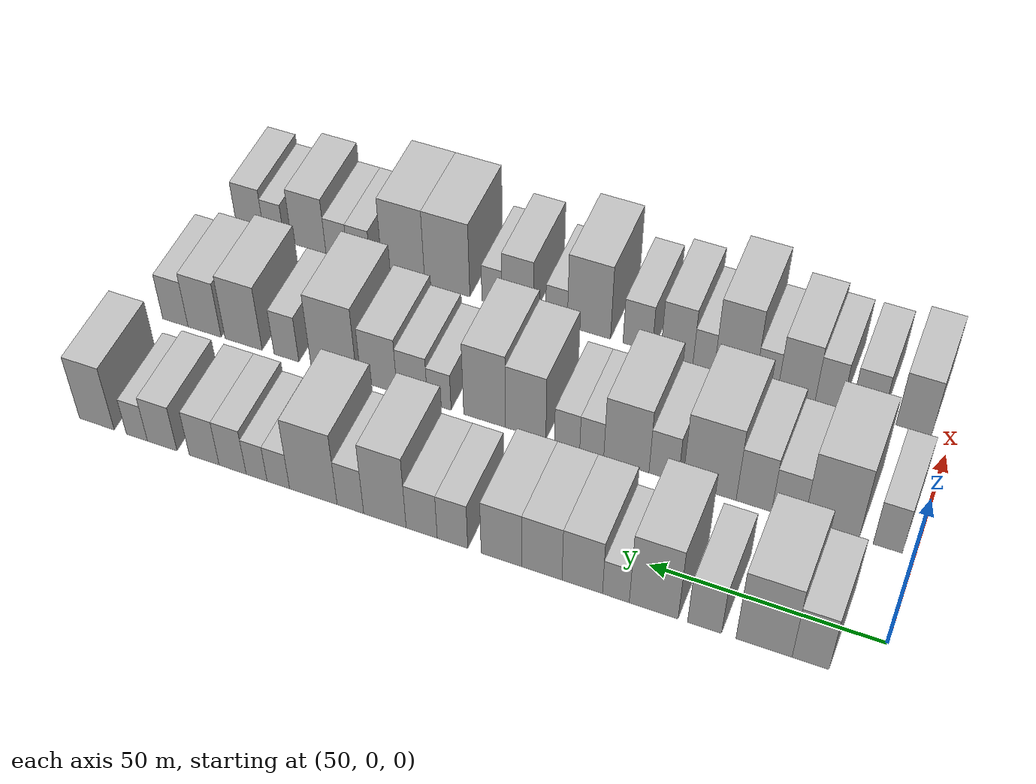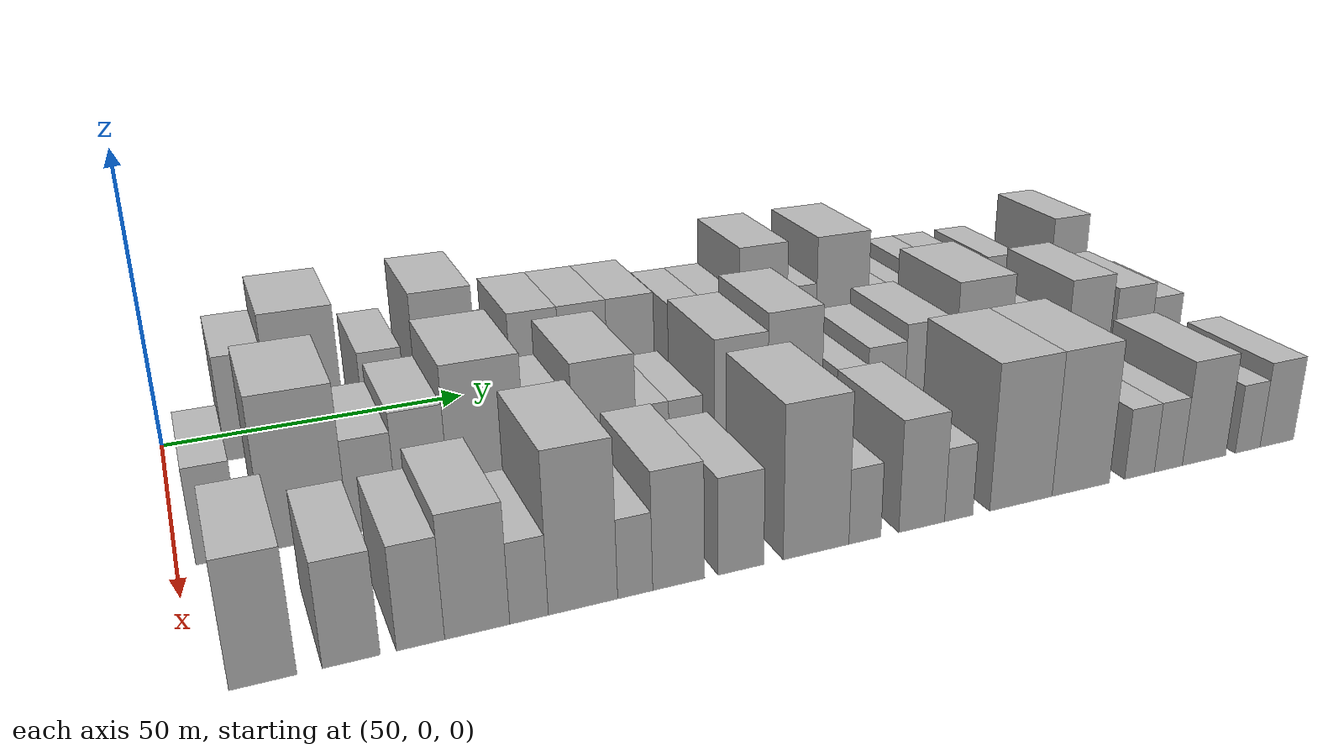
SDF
<sdf version="1.6">
 <world name="default">
  <model name="building_36">
   <static>1</static>
   <pose>50.0000 12.9487 0 0.000000 0.000000 0.000000</pose>
   <link name="link">
    <pose>0 0 9.00 0 0 0</pose>
    <collision name="collision"><geometry><box><size>20.0000 7.5769 18.0000</size></box></geometry></collision>
    <visual name="visual">
     <cast_shadows>0</cast_shadows>
     <geometry><box><size>20.0000 7.5769 18.0000</size></box></geometry>
     <material>
      <script>
       <uri>model://HANNAS_wall/materials/scripts</uri>
       <uri>model://HANNAS_wall/materials/textures</uri>
       <name>vrc/HANNAS_wall</name>
      </script>
     </material>
    </visual>
   </link>
  </model>
  <model name="building_37">
   <static>1</static>
   <pose>50.0000 22.5345 0 0.000000 0.000000 0.000000</pose>
   <link name="link">
    <pose>0 0 12.00 0 0 0</pose>
    <collision name="collision"><geometry><box><size>20.0000 11.5949 24.0000</size></box></geometry></collision>
    <visual name="visual">
     <cast_shadows>0</cast_shadows>
     <geometry><box><size>20.0000 11.5949 24.0000</size></box></geometry>
     <material>
      <script>
       <uri>model://HANNAS_wall/materials/scripts</uri>
       <uri>model://HANNAS_wall/materials/textures</uri>
       <name>vrc/HANNAS_wall</name>
      </script>
     </material>
    </visual>
   </link>
  </model>
  <model name="building_38">
   <static>1</static>
   <pose>50.0000 34.9032 0 0.000000 0.000000 0.000000</pose>
   <link name="link">
    <pose>0 0 7.50 0 0 0</pose>
    <collision name="collision"><geometry><box><size>20.0000 7.1424 15.0000</size></box></geometry></collision>
    <visual name="visual">
     <cast_shadows>0</cast_shadows>
     <geometry><box><size>20.0000 7.1424 15.0000</size></box></geometry>
     <material>
      <script>
       <uri>model://HANNAS_wall/materials/scripts</uri>
       <uri>model://HANNAS_wall/materials/textures</uri>
       <name>vrc/HANNAS_wall</name>
      </script>
     </material>
    </visual>
   </link>
  </model>
  <model name="building_39">
   <static>1</static>
   <pose>50.0000 45.6754 0 0.000000 0.000000 0.000000</pose>
   <link name="link">
    <pose>0 0 12.00 0 0 0</pose>
    <collision name="collision"><geometry><box><size>20.0000 10.4020 24.0000</size></box></geometry></collision>
    <visual name="visual">
     <cast_shadows>0</cast_shadows>
     <geometry><box><size>20.0000 10.4020 24.0000</size></box></geometry>
     <material>
      <script>
       <uri>model://HANNAS_wall/materials/scripts</uri>
       <uri>model://HANNAS_wall/materials/textures</uri>
       <name>vrc/HANNAS_wall</name>
      </script>
     </material>
    </visual>
   </link>
  </model>
  <model name="building_40">
   <static>1</static>
   <pose>50.0000 53.7577 0 0.000000 0.000000 0.000000</pose>
   <link name="link">
    <pose>0 0 6.00 0 0 0</pose>
    <collision name="collision"><geometry><box><size>20.0000 5.7626 12.0000</size></box></geometry></collision>
    <visual name="visual">
     <cast_shadows>0</cast_shadows>
     <geometry><box><size>20.0000 5.7626 12.0000</size></box></geometry>
     <material>
      <script>
       <uri>model://HANNAS_wall/materials/scripts</uri>
       <uri>model://HANNAS_wall/materials/textures</uri>
       <name>vrc/HANNAS_wall</name>
      </script>
     </material>
    </visual>
   </link>
  </model>
  <model name="building_41">
   <static>1</static>
   <pose>50.0000 61.0353 0 0.000000 0.000000 0.000000</pose>
   <link name="link">
    <pose>0 0 9.00 0 0 0</pose>
    <collision name="collision"><geometry><box><size>20.0000 8.7926 18.0000</size></box></geometry></collision>
    <visual name="visual">
     <cast_shadows>0</cast_shadows>
     <geometry><box><size>20.0000 8.7926 18.0000</size></box></geometry>
     <material>
      <script>
       <uri>model://HANNAS_wall/materials/scripts</uri>
       <uri>model://HANNAS_wall/materials/textures</uri>
       <name>vrc/HANNAS_wall</name>
      </script>
     </material>
    </visual>
   </link>
  </model>
  <model name="building_42">
   <static>1</static>
   <pose>50.0000 69.8681 0 0.000000 0.000000 0.000000</pose>
   <link name="link">
    <pose>0 0 9.00 0 0 0</pose>
    <collision name="collision"><geometry><box><size>20.0000 8.8730 18.0000</size></box></geometry></collision>
    <visual name="visual">
     <cast_shadows>0</cast_shadows>
     <geometry><box><size>20.0000 8.8730 18.0000</size></box></geometry>
     <material>
      <script>
       <uri>model://HANNAS_wall/materials/scripts</uri>
       <uri>model://HANNAS_wall/materials/textures</uri>
       <name>vrc/HANNAS_wall</name>
      </script>
     </material>
    </visual>
   </link>
  </model>
  <model name="building_43">
   <static>1</static>
   <pose>50.0000 78.7800 0 0.000000 0.000000 0.000000</pose>
   <link name="link">
    <pose>0 0 9.00 0 0 0</pose>
    <collision name="collision"><geometry><box><size>20.0000 8.9507 18.0000</size></box></geometry></collision>
    <visual name="visual">
     <cast_shadows>0</cast_shadows>
     <geometry><box><size>20.0000 8.9507 18.0000</size></box></geometry>
     <material>
      <script>
       <uri>model://HANNAS_wall/materials/scripts</uri>
       <uri>model://HANNAS_wall/materials/textures</uri>
       <name>vrc/HANNAS_wall</name>
      </script>
     </material>
    </visual>
   </link>
  </model>
  <model name="building_44">
   <static>1</static>
   <pose>50.0000 89.6829 0 0.000000 0.000000 0.000000</pose>
   <link name="link">
    <pose>0 0 7.50 0 0 0</pose>
    <collision name="collision"><geometry><box><size>20.0000 6.8552 15.0000</size></box></geometry></collision>
    <visual name="visual">
     <cast_shadows>0</cast_shadows>
     <geometry><box><size>20.0000 6.8552 15.0000</size></box></geometry>
     <material>
      <script>
       <uri>model://HANNAS_wall/materials/scripts</uri>
       <uri>model://HANNAS_wall/materials/textures</uri>
       <name>vrc/HANNAS_wall</name>
      </script>
     </material>
    </visual>
   </link>
  </model>
  <model name="building_45">
   <static>1</static>
   <pose>50.0000 96.6367 0 0.000000 0.000000 0.000000</pose>
   <link name="link">
    <pose>0 0 7.50 0 0 0</pose>
    <collision name="collision"><geometry><box><size>20.0000 7.0523 15.0000</size></box></geometry></collision>
    <visual name="visual">
     <cast_shadows>0</cast_shadows>
     <geometry><box><size>20.0000 7.0523 15.0000</size></box></geometry>
     <material>
      <script>
       <uri>model://HANNAS_wall/materials/scripts</uri>
       <uri>model://HANNAS_wall/materials/textures</uri>
       <name>vrc/HANNAS_wall</name>
      </script>
     </material>
    </visual>
   </link>
  </model>
  <model name="building_46">
   <static>1</static>
   <pose>50.0000 105.0282 0 0.000000 0.000000 0.000000</pose>
   <link name="link">
    <pose>0 0 12.00 0 0 0</pose>
    <collision name="collision"><geometry><box><size>20.0000 9.7307 24.0000</size></box></geometry></collision>
    <visual name="visual">
     <cast_shadows>0</cast_shadows>
     <geometry><box><size>20.0000 9.7307 24.0000</size></box></geometry>
     <material>
      <script>
       <uri>model://HANNAS_wall/materials/scripts</uri>
       <uri>model://HANNAS_wall/materials/textures</uri>
       <name>vrc/HANNAS_wall</name>
      </script>
     </material>
    </visual>
   </link>
  </model>
  <model name="building_47">
   <static>1</static>
   <pose>50.0000 112.9660 0 0.000000 0.000000 0.000000</pose>
   <link name="link">
    <pose>0 0 7.50 0 0 0</pose>
    <collision name="collision"><geometry><box><size>20.0000 6.1448 15.0000</size></box></geometry></collision>
    <visual name="visual">
     <cast_shadows>0</cast_shadows>
     <geometry><box><size>20.0000 6.1448 15.0000</size></box></geometry>
     <material>
      <script>
       <uri>model://HANNAS_wall/materials/scripts</uri>
       <uri>model://HANNAS_wall/materials/textures</uri>
       <name>vrc/HANNAS_wall</name>
      </script>
     </material>
    </visual>
   </link>
  </model>
  <model name="building_48">
   <static>1</static>
   <pose>50.0000 121.6002 0 0.000000 0.000000 0.000000</pose>
   <link name="link">
    <pose>0 0 12.00 0 0 0</pose>
    <collision name="collision"><geometry><box><size>20.0000 11.1237 24.0000</size></box></geometry></collision>
    <visual name="visual">
     <cast_shadows>0</cast_shadows>
     <geometry><box><size>20.0000 11.1237 24.0000</size></box></geometry>
     <material>
      <script>
       <uri>model://HANNAS_wall/materials/scripts</uri>
       <uri>model://HANNAS_wall/materials/textures</uri>
       <name>vrc/HANNAS_wall</name>
      </script>
     </material>
    </visual>
   </link>
  </model>
  <model name="building_49">
   <static>1</static>
   <pose>50.0000 129.8290 0 0.000000 0.000000 0.000000</pose>
   <link name="link">
    <pose>0 0 6.00 0 0 0</pose>
    <collision name="collision"><geometry><box><size>20.0000 5.3338 12.0000</size></box></geometry></collision>
    <visual name="visual">
     <cast_shadows>0</cast_shadows>
     <geometry><box><size>20.0000 5.3338 12.0000</size></box></geometry>
     <material>
      <script>
       <uri>model://HANNAS_wall/materials/scripts</uri>
       <uri>model://HANNAS_wall/materials/textures</uri>
       <name>vrc/HANNAS_wall</name>
      </script>
     </material>
    </visual>
   </link>
  </model>
  <model name="building_50">
   <static>1</static>
   <pose>50.0000 134.9773 0 0.000000 0.000000 0.000000</pose>
   <link name="link">
    <pose>0 0 6.00 0 0 0</pose>
    <collision name="collision"><geometry><box><size>20.0000 4.9629 12.0000</size></box></geometry></collision>
    <visual name="visual">
     <cast_shadows>0</cast_shadows>
     <geometry><box><size>20.0000 4.9629 12.0000</size></box></geometry>
     <material>
      <script>
       <uri>model://HANNAS_wall/materials/scripts</uri>
       <uri>model://HANNAS_wall/materials/textures</uri>
       <name>vrc/HANNAS_wall</name>
      </script>
     </material>
    </visual>
   </link>
  </model>
  <model name="building_51">
   <static>1</static>
   <pose>50.0000 140.6952 0 0.000000 0.000000 0.000000</pose>
   <link name="link">
    <pose>0 0 7.50 0 0 0</pose>
    <collision name="collision"><geometry><box><size>20.0000 6.4727 15.0000</size></box></geometry></collision>
    <visual name="visual">
     <cast_shadows>0</cast_shadows>
     <geometry><box><size>20.0000 6.4727 15.0000</size></box></geometry>
     <material>
      <script>
       <uri>model://HANNAS_wall/materials/scripts</uri>
       <uri>model://HANNAS_wall/materials/textures</uri>
       <name>vrc/HANNAS_wall</name>
      </script>
     </material>
    </visual>
   </link>
  </model>
  <model name="building_52">
   <static>1</static>
   <pose>50.0000 147.5235 0 0.000000 0.000000 0.000000</pose>
   <link name="link">
    <pose>0 0 7.50 0 0 0</pose>
    <collision name="collision"><geometry><box><size>20.0000 7.1840 15.0000</size></box></geometry></collision>
    <visual name="visual">
     <cast_shadows>0</cast_shadows>
     <geometry><box><size>20.0000 7.1840 15.0000</size></box></geometry>
     <material>
      <script>
       <uri>model://HANNAS_wall/materials/scripts</uri>
       <uri>model://HANNAS_wall/materials/textures</uri>
       <name>vrc/HANNAS_wall</name>
      </script>
     </material>
    </visual>
   </link>
  </model>
  <model name="building_53">
   <static>1</static>
   <pose>50.0000 157.7233 0 0.000000 0.000000 0.000000</pose>
   <link name="link">
    <pose>0 0 7.50 0 0 0</pose>
    <collision name="collision"><geometry><box><size>20.0000 7.2155 15.0000</size></box></geometry></collision>
    <visual name="visual">
     <cast_shadows>0</cast_shadows>
     <geometry><box><size>20.0000 7.2155 15.0000</size></box></geometry>
     <material>
      <script>
       <uri>model://HANNAS_wall/materials/scripts</uri>
       <uri>model://HANNAS_wall/materials/textures</uri>
       <name>vrc/HANNAS_wall</name>
      </script>
     </material>
    </visual>
   </link>
  </model>
  <model name="building_54">
   <static>1</static>
   <pose>50.0000 163.9175 0 0.000000 0.000000 0.000000</pose>
   <link name="link">
    <pose>0 0 6.00 0 0 0</pose>
    <collision name="collision"><geometry><box><size>20.0000 5.1729 12.0000</size></box></geometry></collision>
    <visual name="visual">
     <cast_shadows>0</cast_shadows>
     <geometry><box><size>20.0000 5.1729 12.0000</size></box></geometry>
     <material>
      <script>
       <uri>model://HANNAS_wall/materials/scripts</uri>
       <uri>model://HANNAS_wall/materials/textures</uri>
       <name>vrc/HANNAS_wall</name>
      </script>
     </material>
    </visual>
   </link>
  </model>
  <model name="building_55">
   <static>1</static>
   <pose>50.0000 173.8086 0 0.000000 0.000000 0.000000</pose>
   <link name="link">
    <pose>0 0 10.50 0 0 0</pose>
    <collision name="collision"><geometry><box><size>20.0000 8.6094 21.0000</size></box></geometry></collision>
    <visual name="visual">
     <cast_shadows>0</cast_shadows>
     <geometry><box><size>20.0000 8.6094 21.0000</size></box></geometry>
     <material>
      <script>
       <uri>model://HANNAS_wall/materials/scripts</uri>
       <uri>model://HANNAS_wall/materials/textures</uri>
       <name>vrc/HANNAS_wall</name>
      </script>
     </material>
    </visual>
   </link>
  </model>
  <model name="building_117">
   <static>1</static>
   <pose>82.0000 5.5730 0 0.000000 0.000000 0.000000</pose>
   <link name="link">
    <pose>0 0 7.50 0 0 0</pose>
    <collision name="collision"><geometry><box><size>20.0000 6.1999 15.0000</size></box></geometry></collision>
    <visual name="visual">
     <cast_shadows>0</cast_shadows>
     <geometry><box><size>20.0000 6.1999 15.0000</size></box></geometry>
     <material>
      <script>
       <uri>model://HANNAS_wall/materials/scripts</uri>
       <uri>model://HANNAS_wall/materials/textures</uri>
       <name>vrc/HANNAS_wall</name>
      </script>
     </material>
    </visual>
   </link>
  </model>
  <model name="building_118">
   <static>1</static>
   <pose>82.0000 17.5589 0 0.000000 0.000000 0.000000</pose>
   <link name="link">
    <pose>0 0 12.00 0 0 0</pose>
    <collision name="collision"><geometry><box><size>20.0000 11.7719 24.0000</size></box></geometry></collision>
    <visual name="visual">
     <cast_shadows>0</cast_shadows>
     <geometry><box><size>20.0000 11.7719 24.0000</size></box></geometry>
     <material>
      <script>
       <uri>model://HANNAS_wall/materials/scripts</uri>
       <uri>model://HANNAS_wall/materials/textures</uri>
       <name>vrc/HANNAS_wall</name>
      </script>
     </material>
    </visual>
   </link>
  </model>
  <model name="building_119">
   <static>1</static>
   <pose>82.0000 27.0027 0 0.000000 0.000000 0.000000</pose>
   <link name="link">
    <pose>0 0 7.50 0 0 0</pose>
    <collision name="collision"><geometry><box><size>20.0000 7.1156 15.0000</size></box></geometry></collision>
    <visual name="visual">
     <cast_shadows>0</cast_shadows>
     <geometry><box><size>20.0000 7.1156 15.0000</size></box></geometry>
     <material>
      <script>
       <uri>model://HANNAS_wall/materials/scripts</uri>
       <uri>model://HANNAS_wall/materials/textures</uri>
       <name>vrc/HANNAS_wall</name>
      </script>
     </material>
    </visual>
   </link>
  </model>
  <model name="building_120">
   <static>1</static>
   <pose>82.0000 34.4455 0 0.000000 0.000000 0.000000</pose>
   <link name="link">
    <pose>0 0 9.00 0 0 0</pose>
    <collision name="collision"><geometry><box><size>20.0000 7.7702 18.0000</size></box></geometry></collision>
    <visual name="visual">
     <cast_shadows>0</cast_shadows>
     <geometry><box><size>20.0000 7.7702 18.0000</size></box></geometry>
     <material>
      <script>
       <uri>model://HANNAS_wall/materials/scripts</uri>
       <uri>model://HANNAS_wall/materials/textures</uri>
       <name>vrc/HANNAS_wall</name>
      </script>
     </material>
    </visual>
   </link>
  </model>
  <model name="building_121">
   <static>1</static>
   <pose>82.0000 44.2616 0 0.000000 0.000000 0.000000</pose>
   <link name="link">
    <pose>0 0 12.00 0 0 0</pose>
    <collision name="collision"><geometry><box><size>20.0000 11.8620 24.0000</size></box></geometry></collision>
    <visual name="visual">
     <cast_shadows>0</cast_shadows>
     <geometry><box><size>20.0000 11.8620 24.0000</size></box></geometry>
     <material>
      <script>
       <uri>model://HANNAS_wall/materials/scripts</uri>
       <uri>model://HANNAS_wall/materials/textures</uri>
       <name>vrc/HANNAS_wall</name>
      </script>
     </material>
    </visual>
   </link>
  </model>
  <model name="building_122">
   <static>1</static>
   <pose>82.0000 54.4752 0 0.000000 0.000000 0.000000</pose>
   <link name="link">
    <pose>0 0 7.50 0 0 0</pose>
    <collision name="collision"><geometry><box><size>20.0000 6.5651 15.0000</size></box></geometry></collision>
    <visual name="visual">
     <cast_shadows>0</cast_shadows>
     <geometry><box><size>20.0000 6.5651 15.0000</size></box></geometry>
     <material>
      <script>
       <uri>model://HANNAS_wall/materials/scripts</uri>
       <uri>model://HANNAS_wall/materials/textures</uri>
       <name>vrc/HANNAS_wall</name>
      </script>
     </material>
    </visual>
   </link>
  </model>
  <model name="building_123">
   <static>1</static>
   <pose>82.0000 62.8892 0 0.000000 0.000000 0.000000</pose>
   <link name="link">
    <pose>0 0 10.50 0 0 0</pose>
    <collision name="collision"><geometry><box><size>20.0000 10.2628 21.0000</size></box></geometry></collision>
    <visual name="visual">
     <cast_shadows>0</cast_shadows>
     <geometry><box><size>20.0000 10.2628 21.0000</size></box></geometry>
     <material>
      <script>
       <uri>model://HANNAS_wall/materials/scripts</uri>
       <uri>model://HANNAS_wall/materials/textures</uri>
       <name>vrc/HANNAS_wall</name>
      </script>
     </material>
    </visual>
   </link>
  </model>
  <model name="building_124">
   <static>1</static>
   <pose>82.0000 70.7670 0 0.000000 0.000000 0.000000</pose>
   <link name="link">
    <pose>0 0 6.00 0 0 0</pose>
    <collision name="collision"><geometry><box><size>20.0000 5.4930 12.0000</size></box></geometry></collision>
    <visual name="visual">
     <cast_shadows>0</cast_shadows>
     <geometry><box><size>20.0000 5.4930 12.0000</size></box></geometry>
     <material>
      <script>
       <uri>model://HANNAS_wall/materials/scripts</uri>
       <uri>model://HANNAS_wall/materials/textures</uri>
       <name>vrc/HANNAS_wall</name>
      </script>
     </material>
    </visual>
   </link>
  </model>
  <model name="building_125">
   <static>1</static>
   <pose>82.0000 76.4279 0 0.000000 0.000000 0.000000</pose>
   <link name="link">
    <pose>0 0 6.00 0 0 0</pose>
    <collision name="collision"><geometry><box><size>20.0000 5.8287 12.0000</size></box></geometry></collision>
    <visual name="visual">
     <cast_shadows>0</cast_shadows>
     <geometry><box><size>20.0000 5.8287 12.0000</size></box></geometry>
     <material>
      <script>
       <uri>model://HANNAS_wall/materials/scripts</uri>
       <uri>model://HANNAS_wall/materials/textures</uri>
       <name>vrc/HANNAS_wall</name>
      </script>
     </material>
    </visual>
   </link>
  </model>
  <model name="building_126">
   <static>1</static>
   <pose>82.0000 86.0346 0 0.000000 0.000000 0.000000</pose>
   <link name="link">
    <pose>0 0 10.50 0 0 0</pose>
    <collision name="collision"><geometry><box><size>20.0000 9.3848 21.0000</size></box></geometry></collision>
    <visual name="visual">
     <cast_shadows>0</cast_shadows>
     <geometry><box><size>20.0000 9.3848 21.0000</size></box></geometry>
     <material>
      <script>
       <uri>model://HANNAS_wall/materials/scripts</uri>
       <uri>model://HANNAS_wall/materials/textures</uri>
       <name>vrc/HANNAS_wall</name>
      </script>
     </material>
    </visual>
   </link>
  </model>
  <model name="building_127">
   <static>1</static>
   <pose>82.0000 95.6562 0 0.000000 0.000000 0.000000</pose>
   <link name="link">
    <pose>0 0 12.00 0 0 0</pose>
    <collision name="collision"><geometry><box><size>20.0000 9.8583 24.0000</size></box></geometry></collision>
    <visual name="visual">
     <cast_shadows>0</cast_shadows>
     <geometry><box><size>20.0000 9.8583 24.0000</size></box></geometry>
     <material>
      <script>
       <uri>model://HANNAS_wall/materials/scripts</uri>
       <uri>model://HANNAS_wall/materials/textures</uri>
       <name>vrc/HANNAS_wall</name>
      </script>
     </material>
    </visual>
   </link>
  </model>
  <model name="building_128">
   <static>1</static>
   <pose>82.0000 106.4060 0 0.000000 0.000000 0.000000</pose>
   <link name="link">
    <pose>0 0 6.00 0 0 0</pose>
    <collision name="collision"><geometry><box><size>20.0000 5.6413 12.0000</size></box></geometry></collision>
    <visual name="visual">
     <cast_shadows>0</cast_shadows>
     <geometry><box><size>20.0000 5.6413 12.0000</size></box></geometry>
     <material>
      <script>
       <uri>model://HANNAS_wall/materials/scripts</uri>
       <uri>model://HANNAS_wall/materials/textures</uri>
       <name>vrc/HANNAS_wall</name>
      </script>
     </material>
    </visual>
   </link>
  </model>
  <model name="building_129">
   <static>1</static>
   <pose>82.0000 112.8814 0 0.000000 0.000000 0.000000</pose>
   <link name="link">
    <pose>0 0 7.50 0 0 0</pose>
    <collision name="collision"><geometry><box><size>20.0000 7.3095 15.0000</size></box></geometry></collision>
    <visual name="visual">
     <cast_shadows>0</cast_shadows>
     <geometry><box><size>20.0000 7.3095 15.0000</size></box></geometry>
     <material>
      <script>
       <uri>model://HANNAS_wall/materials/scripts</uri>
       <uri>model://HANNAS_wall/materials/textures</uri>
       <name>vrc/HANNAS_wall</name>
      </script>
     </material>
    </visual>
   </link>
  </model>
  <model name="building_130">
   <static>1</static>
   <pose>82.0000 120.9168 0 0.000000 0.000000 0.000000</pose>
   <link name="link">
    <pose>0 0 9.00 0 0 0</pose>
    <collision name="collision"><geometry><box><size>20.0000 8.7613 18.0000</size></box></geometry></collision>
    <visual name="visual">
     <cast_shadows>0</cast_shadows>
     <geometry><box><size>20.0000 8.7613 18.0000</size></box></geometry>
     <material>
      <script>
       <uri>model://HANNAS_wall/materials/scripts</uri>
       <uri>model://HANNAS_wall/materials/textures</uri>
       <name>vrc/HANNAS_wall</name>
      </script>
     </material>
    </visual>
   </link>
  </model>
  <model name="building_131">
   <static>1</static>
   <pose>82.0000 131.9525 0 0.000000 0.000000 0.000000</pose>
   <link name="link">
    <pose>0 0 12.00 0 0 0</pose>
    <collision name="collision"><geometry><box><size>20.0000 11.3101 24.0000</size></box></geometry></collision>
    <visual name="visual">
     <cast_shadows>0</cast_shadows>
     <geometry><box><size>20.0000 11.3101 24.0000</size></box></geometry>
     <material>
      <script>
       <uri>model://HANNAS_wall/materials/scripts</uri>
       <uri>model://HANNAS_wall/materials/textures</uri>
       <name>vrc/HANNAS_wall</name>
      </script>
     </material>
    </visual>
   </link>
  </model>
  <model name="building_132">
   <static>1</static>
   <pose>82.0000 143.6921 0 0.000000 0.000000 0.000000</pose>
   <link name="link">
    <pose>0 0 7.50 0 0 0</pose>
    <collision name="collision"><geometry><box><size>20.0000 6.1692 15.0000</size></box></geometry></collision>
    <visual name="visual">
     <cast_shadows>0</cast_shadows>
     <geometry><box><size>20.0000 6.1692 15.0000</size></box></geometry>
     <material>
      <script>
       <uri>model://HANNAS_wall/materials/scripts</uri>
       <uri>model://HANNAS_wall/materials/textures</uri>
       <name>vrc/HANNAS_wall</name>
      </script>
     </material>
    </visual>
   </link>
  </model>
  <model name="building_133">
   <static>1</static>
   <pose>82.0000 154.4560 0 0.000000 0.000000 0.000000</pose>
   <link name="link">
    <pose>0 0 10.50 0 0 0</pose>
    <collision name="collision"><geometry><box><size>20.0000 9.3586 21.0000</size></box></geometry></collision>
    <visual name="visual">
     <cast_shadows>0</cast_shadows>
     <geometry><box><size>20.0000 9.3586 21.0000</size></box></geometry>
     <material>
      <script>
       <uri>model://HANNAS_wall/materials/scripts</uri>
       <uri>model://HANNAS_wall/materials/textures</uri>
       <name>vrc/HANNAS_wall</name>
      </script>
     </material>
    </visual>
   </link>
  </model>
  <model name="building_134">
   <static>1</static>
   <pose>82.0000 164.3613 0 0.000000 0.000000 0.000000</pose>
   <link name="link">
    <pose>0 0 9.00 0 0 0</pose>
    <collision name="collision"><geometry><box><size>20.0000 8.4521 18.0000</size></box></geometry></collision>
    <visual name="visual">
     <cast_shadows>0</cast_shadows>
     <geometry><box><size>20.0000 8.4521 18.0000</size></box></geometry>
     <material>
      <script>
       <uri>model://HANNAS_wall/materials/scripts</uri>
       <uri>model://HANNAS_wall/materials/textures</uri>
       <name>vrc/HANNAS_wall</name>
      </script>
     </material>
    </visual>
   </link>
  </model>
  <model name="building_135">
   <static>1</static>
   <pose>82.0000 171.8456 0 0.000000 0.000000 0.000000</pose>
   <link name="link">
    <pose>0 0 7.50 0 0 0</pose>
    <collision name="collision"><geometry><box><size>20.0000 6.5165 15.0000</size></box></geometry></collision>
    <visual name="visual">
     <cast_shadows>0</cast_shadows>
     <geometry><box><size>20.0000 6.5165 15.0000</size></box></geometry>
     <material>
      <script>
       <uri>model://HANNAS_wall/materials/scripts</uri>
       <uri>model://HANNAS_wall/materials/textures</uri>
       <name>vrc/HANNAS_wall</name>
      </script>
     </material>
    </visual>
   </link>
  </model>
  <model name="building_195">
   <static>1</static>
   <pose>114.0000 8.0147 0 0.000000 0.000000 0.000000</pose>
   <link name="link">
    <pose>0 0 9.00 0 0 0</pose>
    <collision name="collision"><geometry><box><size>20.0000 7.9261 18.0000</size></box></geometry></collision>
    <visual name="visual">
     <cast_shadows>0</cast_shadows>
     <geometry><box><size>20.0000 7.9261 18.0000</size></box></geometry>
     <material>
      <script>
       <uri>model://HANNAS_wall/materials/scripts</uri>
       <uri>model://HANNAS_wall/materials/textures</uri>
       <name>vrc/HANNAS_wall</name>
      </script>
     </material>
    </visual>
   </link>
  </model>
  <model name="building_196">
   <static>1</static>
   <pose>114.0000 18.5134 0 0.000000 0.000000 0.000000</pose>
   <link name="link">
    <pose>0 0 7.50 0 0 0</pose>
    <collision name="collision"><geometry><box><size>20.0000 7.0713 15.0000</size></box></geometry></collision>
    <visual name="visual">
     <cast_shadows>0</cast_shadows>
     <geometry><box><size>20.0000 7.0713 15.0000</size></box></geometry>
     <material>
      <script>
       <uri>model://HANNAS_wall/materials/scripts</uri>
       <uri>model://HANNAS_wall/materials/textures</uri>
       <name>vrc/HANNAS_wall</name>
      </script>
     </material>
    </visual>
   </link>
  </model>
  <model name="building_197">
   <static>1</static>
   <pose>114.0000 27.1017 0 0.000000 0.000000 0.000000</pose>
   <link name="link">
    <pose>0 0 7.50 0 0 0</pose>
    <collision name="collision"><geometry><box><size>20.0000 6.1053 15.0000</size></box></geometry></collision>
    <visual name="visual">
     <cast_shadows>0</cast_shadows>
     <geometry><box><size>20.0000 6.1053 15.0000</size></box></geometry>
     <material>
      <script>
       <uri>model://HANNAS_wall/materials/scripts</uri>
       <uri>model://HANNAS_wall/materials/textures</uri>
       <name>vrc/HANNAS_wall</name>
      </script>
     </material>
    </visual>
   </link>
  </model>
  <model name="building_198">
   <static>1</static>
   <pose>114.0000 34.4002 0 0.000000 0.000000 0.000000</pose>
   <link name="link">
    <pose>0 0 9.00 0 0 0</pose>
    <collision name="collision"><geometry><box><size>20.0000 8.4916 18.0000</size></box></geometry></collision>
    <visual name="visual">
     <cast_shadows>0</cast_shadows>
     <geometry><box><size>20.0000 8.4916 18.0000</size></box></geometry>
     <material>
      <script>
       <uri>model://HANNAS_wall/materials/scripts</uri>
       <uri>model://HANNAS_wall/materials/textures</uri>
       <name>vrc/HANNAS_wall</name>
      </script>
     </material>
    </visual>
   </link>
  </model>
  <model name="building_199">
   <static>1</static>
   <pose>114.0000 41.2339 0 0.000000 0.000000 0.000000</pose>
   <link name="link">
    <pose>0 0 6.00 0 0 0</pose>
    <collision name="collision"><geometry><box><size>20.0000 5.1758 12.0000</size></box></geometry></collision>
    <visual name="visual">
     <cast_shadows>0</cast_shadows>
     <geometry><box><size>20.0000 5.1758 12.0000</size></box></geometry>
     <material>
      <script>
       <uri>model://HANNAS_wall/materials/scripts</uri>
       <uri>model://HANNAS_wall/materials/textures</uri>
       <name>vrc/HANNAS_wall</name>
      </script>
     </material>
    </visual>
   </link>
  </model>
  <model name="building_200">
   <static>1</static>
   <pose>114.0000 48.6252 0 0.000000 0.000000 0.000000</pose>
   <link name="link">
    <pose>0 0 12.00 0 0 0</pose>
    <collision name="collision"><geometry><box><size>20.0000 9.6068 24.0000</size></box></geometry></collision>
    <visual name="visual">
     <cast_shadows>0</cast_shadows>
     <geometry><box><size>20.0000 9.6068 24.0000</size></box></geometry>
     <material>
      <script>
       <uri>model://HANNAS_wall/materials/scripts</uri>
       <uri>model://HANNAS_wall/materials/textures</uri>
       <name>vrc/HANNAS_wall</name>
      </script>
     </material>
    </visual>
   </link>
  </model>
  <model name="building_201">
   <static>1</static>
   <pose>114.0000 55.9364 0 0.000000 0.000000 0.000000</pose>
   <link name="link">
    <pose>0 0 6.00 0 0 0</pose>
    <collision name="collision"><geometry><box><size>20.0000 5.0155 12.0000</size></box></geometry></collision>
    <visual name="visual">
     <cast_shadows>0</cast_shadows>
     <geometry><box><size>20.0000 5.0155 12.0000</size></box></geometry>
     <material>
      <script>
       <uri>model://HANNAS_wall/materials/scripts</uri>
       <uri>model://HANNAS_wall/materials/textures</uri>
       <name>vrc/HANNAS_wall</name>
      </script>
     </material>
    </visual>
   </link>
  </model>
  <model name="building_202">
   <static>1</static>
   <pose>114.0000 62.2513 0 0.000000 0.000000 0.000000</pose>
   <link name="link">
    <pose>0 0 9.00 0 0 0</pose>
    <collision name="collision"><geometry><box><size>20.0000 7.6143 18.0000</size></box></geometry></collision>
    <visual name="visual">
     <cast_shadows>0</cast_shadows>
     <geometry><box><size>20.0000 7.6143 18.0000</size></box></geometry>
     <material>
      <script>
       <uri>model://HANNAS_wall/materials/scripts</uri>
       <uri>model://HANNAS_wall/materials/textures</uri>
       <name>vrc/HANNAS_wall</name>
      </script>
     </material>
    </visual>
   </link>
  </model>
  <model name="building_203">
   <static>1</static>
   <pose>114.0000 71.5457 0 0.000000 0.000000 0.000000</pose>
   <link name="link">
    <pose>0 0 7.50 0 0 0</pose>
    <collision name="collision"><geometry><box><size>20.0000 6.9745 15.0000</size></box></geometry></collision>
    <visual name="visual">
     <cast_shadows>0</cast_shadows>
     <geometry><box><size>20.0000 6.9745 15.0000</size></box></geometry>
     <material>
      <script>
       <uri>model://HANNAS_wall/materials/scripts</uri>
       <uri>model://HANNAS_wall/materials/textures</uri>
       <name>vrc/HANNAS_wall</name>
      </script>
     </material>
    </visual>
   </link>
  </model>
  <model name="building_204">
   <static>1</static>
   <pose>114.0000 83.2669 0 0.000000 0.000000 0.000000</pose>
   <link name="link">
    <pose>0 0 12.00 0 0 0</pose>
    <collision name="collision"><geometry><box><size>20.0000 10.4678 24.0000</size></box></geometry></collision>
    <visual name="visual">
     <cast_shadows>0</cast_shadows>
     <geometry><box><size>20.0000 10.4678 24.0000</size></box></geometry>
     <material>
      <script>
       <uri>model://HANNAS_wall/materials/scripts</uri>
       <uri>model://HANNAS_wall/materials/textures</uri>
       <name>vrc/HANNAS_wall</name>
      </script>
     </material>
    </visual>
   </link>
  </model>
  <model name="building_205">
   <static>1</static>
   <pose>114.0000 91.1286 0 0.000000 0.000000 0.000000</pose>
   <link name="link">
    <pose>0 0 6.00 0 0 0</pose>
    <collision name="collision"><geometry><box><size>20.0000 5.2556 12.0000</size></box></geometry></collision>
    <visual name="visual">
     <cast_shadows>0</cast_shadows>
     <geometry><box><size>20.0000 5.2556 12.0000</size></box></geometry>
     <material>
      <script>
       <uri>model://HANNAS_wall/materials/scripts</uri>
       <uri>model://HANNAS_wall/materials/textures</uri>
       <name>vrc/HANNAS_wall</name>
      </script>
     </material>
    </visual>
   </link>
  </model>
  <model name="building_206">
   <static>1</static>
   <pose>114.0000 100.6562 0 0.000000 0.000000 0.000000</pose>
   <link name="link">
    <pose>0 0 9.00 0 0 0</pose>
    <collision name="collision"><geometry><box><size>20.0000 7.7996 18.0000</size></box></geometry></collision>
    <visual name="visual">
     <cast_shadows>0</cast_shadows>
     <geometry><box><size>20.0000 7.7996 18.0000</size></box></geometry>
     <material>
      <script>
       <uri>model://HANNAS_wall/materials/scripts</uri>
       <uri>model://HANNAS_wall/materials/textures</uri>
       <name>vrc/HANNAS_wall</name>
      </script>
     </material>
    </visual>
   </link>
  </model>
  <model name="building_207">
   <static>1</static>
   <pose>114.0000 107.0239 0 0.000000 0.000000 0.000000</pose>
   <link name="link">
    <pose>0 0 6.00 0 0 0</pose>
    <collision name="collision"><geometry><box><size>20.0000 4.9358 12.0000</size></box></geometry></collision>
    <visual name="visual">
     <cast_shadows>0</cast_shadows>
     <geometry><box><size>20.0000 4.9358 12.0000</size></box></geometry>
     <material>
      <script>
       <uri>model://HANNAS_wall/materials/scripts</uri>
       <uri>model://HANNAS_wall/materials/textures</uri>
       <name>vrc/HANNAS_wall</name>
      </script>
     </material>
    </visual>
   </link>
  </model>
  <model name="building_208">
   <static>1</static>
   <pose>114.0000 118.1660 0 0.000000 0.000000 0.000000</pose>
   <link name="link">
    <pose>0 0 12.00 0 0 0</pose>
    <collision name="collision"><geometry><box><size>20.0000 11.3484 24.0000</size></box></geometry></collision>
    <visual name="visual">
     <cast_shadows>0</cast_shadows>
     <geometry><box><size>20.0000 11.3484 24.0000</size></box></geometry>
     <material>
      <script>
       <uri>model://HANNAS_wall/materials/scripts</uri>
       <uri>model://HANNAS_wall/materials/textures</uri>
       <name>vrc/HANNAS_wall</name>
      </script>
     </material>
    </visual>
   </link>
  </model>
  <model name="building_209">
   <static>1</static>
   <pose>114.0000 129.2633 0 0.000000 0.000000 0.000000</pose>
   <link name="link">
    <pose>0 0 12.00 0 0 0</pose>
    <collision name="collision"><geometry><box><size>20.0000 10.8460 24.0000</size></box></geometry></collision>
    <visual name="visual">
     <cast_shadows>0</cast_shadows>
     <geometry><box><size>20.0000 10.8460 24.0000</size></box></geometry>
     <material>
      <script>
       <uri>model://HANNAS_wall/materials/scripts</uri>
       <uri>model://HANNAS_wall/materials/textures</uri>
       <name>vrc/HANNAS_wall</name>
      </script>
     </material>
    </visual>
   </link>
  </model>
  <model name="building_210">
   <static>1</static>
   <pose>114.0000 140.6148 0 0.000000 0.000000 0.000000</pose>
   <link name="link">
    <pose>0 0 6.00 0 0 0</pose>
    <collision name="collision"><geometry><box><size>20.0000 5.8572 12.0000</size></box></geometry></collision>
    <visual name="visual">
     <cast_shadows>0</cast_shadows>
     <geometry><box><size>20.0000 5.8572 12.0000</size></box></geometry>
     <material>
      <script>
       <uri>model://HANNAS_wall/materials/scripts</uri>
       <uri>model://HANNAS_wall/materials/textures</uri>
       <name>vrc/HANNAS_wall</name>
      </script>
     </material>
    </visual>
   </link>
  </model>
  <model name="building_211">
   <static>1</static>
   <pose>114.0000 146.3548 0 0.000000 0.000000 0.000000</pose>
   <link name="link">
    <pose>0 0 6.00 0 0 0</pose>
    <collision name="collision"><geometry><box><size>20.0000 5.6227 12.0000</size></box></geometry></collision>
    <visual name="visual">
     <cast_shadows>0</cast_shadows>
     <geometry><box><size>20.0000 5.6227 12.0000</size></box></geometry>
     <material>
      <script>
       <uri>model://HANNAS_wall/materials/scripts</uri>
       <uri>model://HANNAS_wall/materials/textures</uri>
       <name>vrc/HANNAS_wall</name>
      </script>
     </material>
    </visual>
   </link>
  </model>
  <model name="building_212">
   <static>1</static>
   <pose>114.0000 153.6385 0 0.000000 0.000000 0.000000</pose>
   <link name="link">
    <pose>0 0 9.00 0 0 0</pose>
    <collision name="collision"><geometry><box><size>20.0000 8.9446 18.0000</size></box></geometry></collision>
    <visual name="visual">
     <cast_shadows>0</cast_shadows>
     <geometry><box><size>20.0000 8.9446 18.0000</size></box></geometry>
     <material>
      <script>
       <uri>model://HANNAS_wall/materials/scripts</uri>
       <uri>model://HANNAS_wall/materials/textures</uri>
       <name>vrc/HANNAS_wall</name>
      </script>
     </material>
    </visual>
   </link>
  </model>
  <model name="building_213">
   <static>1</static>
   <pose>114.0000 162.7572 0 0.000000 0.000000 0.000000</pose>
   <link name="link">
    <pose>0 0 6.00 0 0 0</pose>
    <collision name="collision"><geometry><box><size>20.0000 5.2929 12.0000</size></box></geometry></collision>
    <visual name="visual">
     <cast_shadows>0</cast_shadows>
     <geometry><box><size>20.0000 5.2929 12.0000</size></box></geometry>
     <material>
      <script>
       <uri>model://HANNAS_wall/materials/scripts</uri>
       <uri>model://HANNAS_wall/materials/textures</uri>
       <name>vrc/HANNAS_wall</name>
      </script>
     </material>
    </visual>
   </link>
  </model>
  <model name="building_214">
   <static>1</static>
   <pose>114.0000 169.0304 0 0.000000 0.000000 0.000000</pose>
   <link name="link">
    <pose>0 0 7.50 0 0 0</pose>
    <collision name="collision"><geometry><box><size>20.0000 7.2534 15.0000</size></box></geometry></collision>
    <visual name="visual">
     <cast_shadows>0</cast_shadows>
     <geometry><box><size>20.0000 7.2534 15.0000</size></box></geometry>
     <material>
      <script>
       <uri>model://HANNAS_wall/materials/scripts</uri>
       <uri>model://HANNAS_wall/materials/textures</uri>
       <name>vrc/HANNAS_wall</name>
      </script>
     </material>
    </visual>
   </link>
  </model>
 </world>
</sdf>
